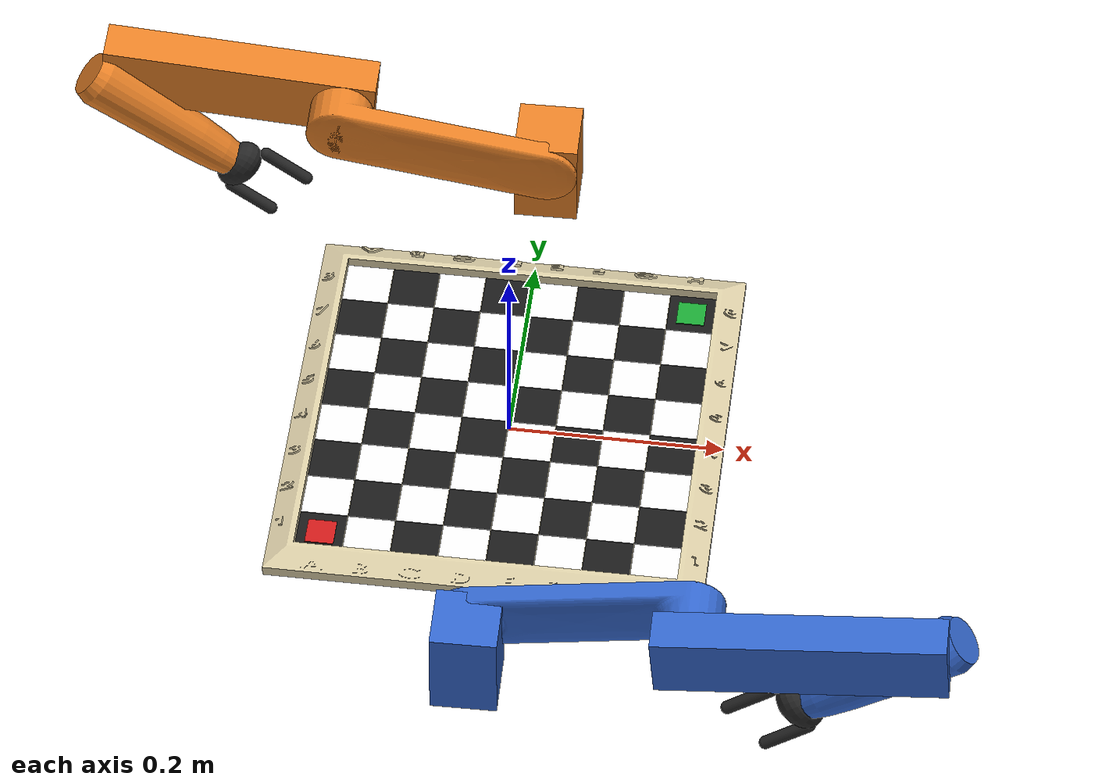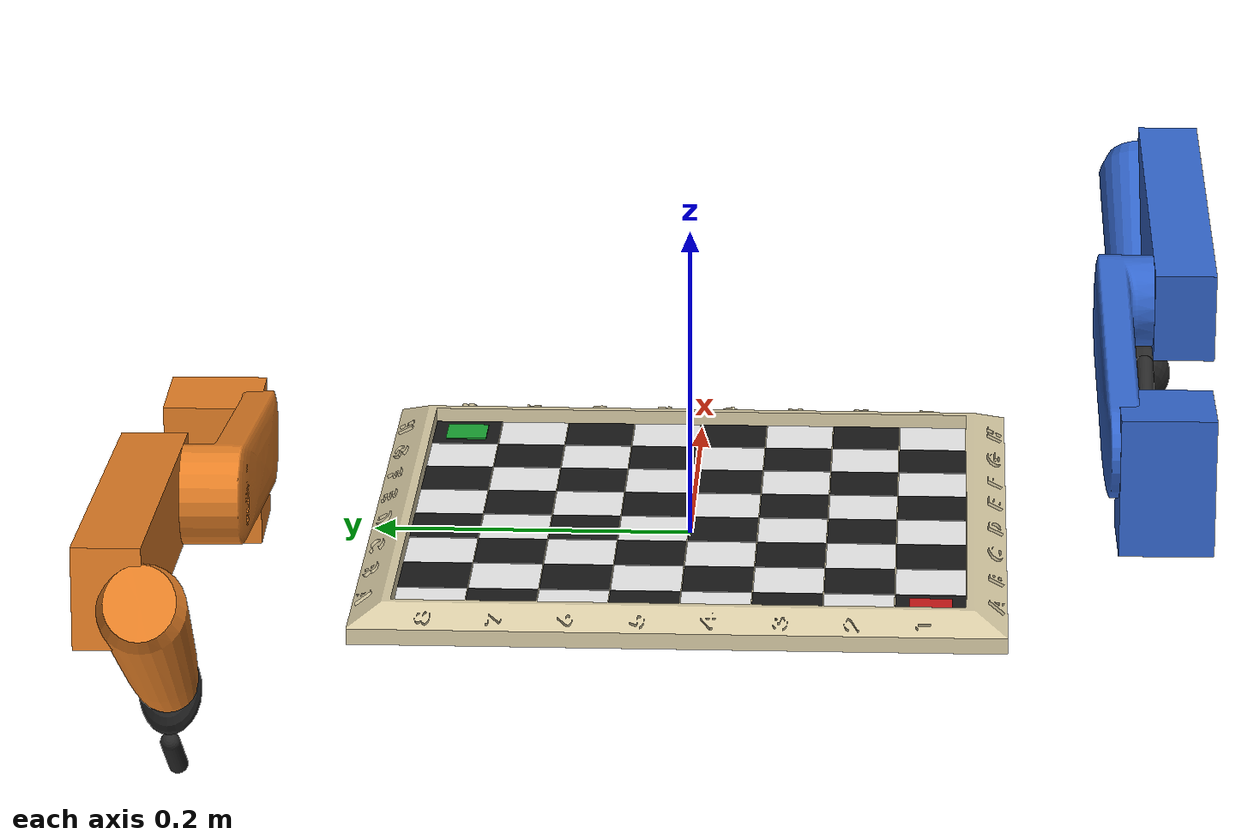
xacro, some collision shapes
<?xml version="1.0"?>
<robot name="dual_chess" xmlns:xacro="http://www.ros.org/wiki/xacro">
  <xacro:arg name="robot1_enabled" default="true"/>
  <xacro:arg name="robot2_enabled" default="true"/>
  <xacro:arg name="sim_gazebo" default="false"/>
  <!-- Compatibility with v1.2 launch; CAD STL is ALWAYS used. -->
  <xacro:arg name="use_meshes" default="true"/>

  <xacro:include filename="$(find dual_chess_description)/urdf/common/materials.xacro"/>
  <xacro:include filename="$(find dual_chess_description)/urdf/board/board.macro.xacro"/>
  <xacro:include filename="$(find dual_chess_description)/urdf/arm/arm_cad.macro.xacro"/>
  <xacro:include filename="$(find dual_chess_description)/urdf/arm/arm_cad.gazebo.xacro"/>

  <link name="world"/>
  <!-- Board geometry and mounting dimensions remain provisional. -->
  <xacro:chess_board parent="world"/>

  <xacro:if value="$(arg robot1_enabled)">
    <xacro:cad_chess_arm prefix="robot1_" parent="world" material="robot1_blue">
      <origin xyz="0 ${-robot_base_offset} 0" rpy="0 0 ${pi/2}"/>
    </xacro:cad_chess_arm>
  </xacro:if>
  <xacro:if value="$(arg robot2_enabled)">
    <xacro:cad_chess_arm prefix="robot2_" parent="world" material="robot2_orange">
      <origin xyz="0 ${robot_base_offset} 0" rpy="0 0 ${-pi/2}"/>
    </xacro:cad_chess_arm>
  </xacro:if>

  <xacro:if value="$(arg sim_gazebo)">
    <gazebo>
      <plugin filename="gz-sim-joint-state-publisher-system"
              name="gz::sim::systems::JointStatePublisher"/>
    </gazebo>
    <xacro:if value="$(arg robot1_enabled)">
      <xacro:cad_chess_arm_gz prefix="robot1_" ns="robot1"/>
    </xacro:if>
    <xacro:if value="$(arg robot2_enabled)">
      <xacro:cad_chess_arm_gz prefix="robot2_" ns="robot2"/>
    </xacro:if>
  </xacro:if>
</robot>

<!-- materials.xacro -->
<!-- Materials are defined ONCE (URDF material names are global). -->
<robot xmlns:xacro="http://www.ros.org/wiki/xacro">
  <material name="robot1_blue"><color rgba="0.20 0.40 0.80 1.0"/></material>
  <material name="robot2_orange"><color rgba="0.90 0.50 0.15 1.0"/></material>
  <material name="gripper_dark"><color rgba="0.15 0.15 0.15 1.0"/></material>
  <material name="board_wood"><color rgba="0.85 0.80 0.65 1.0"/></material>
  <material name="square_light"><color rgba="0.95 0.95 0.95 1.0"/></material>
  <material name="square_dark"><color rgba="0.10 0.10 0.10 1.0"/></material>
  <material name="marker_a1"><color rgba="0.80 0.10 0.10 1.0"/></material>
  <material name="marker_h8"><color rgba="0.10 0.65 0.20 1.0"/></material>
</robot>

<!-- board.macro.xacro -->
<robot xmlns:xacro="http://www.ros.org/wiki/xacro">
  <xacro:include filename="$(find dual_chess_description)/urdf/board/board_params_cad.xacro"/>

  <xacro:macro name="chess_board" params="parent">
    <link name="board_link">
      <visual name="board_cad_visual">
        <origin xyz="${-board_size/2} ${board_size/2} ${-board_thickness/2}"
                rpy="${pi/2} 0 0"/>
        <geometry>
          <mesh filename="package://dual_chess_description/meshes/chess_board/Board_1_original.STL"
                scale="0.001 0.001 0.001"/>
        </geometry>
        <!-- STL has no per-square material colours. Preserve its geometry. -->
        <material name="board_wood"/>
      </visual>

      <!-- Board squares are separate fixed child links below. RViz may apply the
           first material to all visuals if they share a single URDF link. -->
      <!-- Collision uses a simplified foundation (z=0..10 mm). -->
      <collision name="playing_area_collision">
        <origin xyz="0 0 ${-board_thickness/2 + board_play_surface_height/2}" rpy="0 0 0"/>
        <geometry><box size="${board_size} ${board_size} ${board_play_surface_height}"/></geometry>
      </collision>
      <!-- Four raised perimeter rails, preserving the 35cm playing area. -->
      <collision name="rim_left_collision">
        <origin xyz="${-board_size/2 + board_rim_width/2} 0 ${board_play_surface_height/2}"/>
        <geometry><box size="${board_rim_width} ${board_size} ${board_thickness - board_play_surface_height}"/></geometry>
      </collision>
      <collision name="rim_right_collision">
        <origin xyz="${board_size/2 - board_rim_width/2} 0 ${board_play_surface_height/2}"/>
        <geometry><box size="${board_rim_width} ${board_size} ${board_thickness - board_play_surface_height}"/></geometry>
      </collision>
      <collision name="rim_front_collision">
        <origin xyz="0 ${-board_size/2 + board_rim_width/2} ${board_play_surface_height/2}"/>
        <geometry><box size="${board_play_size} ${board_rim_width} ${board_thickness - board_play_surface_height}"/></geometry>
      </collision>
      <collision name="rim_back_collision">
        <origin xyz="0 ${board_size/2 - board_rim_width/2} ${board_play_surface_height/2}"/>
        <geometry><box size="${board_play_size} ${board_rim_width} ${board_thickness - board_play_surface_height}"/></geometry>
      </collision>

      <inertial>
        <origin xyz="0 0 0" rpy="0 0 0"/>
        <mass value="1.0"/>
        <inertia ixx="${(board_size*board_size+board_thickness*board_thickness)/12.0}" ixy="0" ixz="0"
                 iyy="${(board_size*board_size+board_thickness*board_thickness)/12.0}" iyz="0"
                 izz="${(2*board_size*board_size)/12.0}"/>
      </inertial>
    </link>

    <joint name="board_joint" type="fixed">
      <parent link="${parent}"/>
      <child link="board_link"/>
      <!-- Board rests on world z=0; link origin at the board vertical centre. -->
      <origin xyz="0 0 ${board_thickness/2}" rpy="0 0 0"/>
    </joint>

    <!-- Chessboard frame at the ACTUAL playing-square top plane z=10mm;
         raised outer frame reaches z=20.1892mm. -->
    <link name="board_surface"/>
    <joint name="board_surface_joint" type="fixed">
      <parent link="board_link"/>
      <child link="board_surface"/>
      <origin xyz="0 0 ${board_play_surface_height-board_thickness/2}" rpy="0 0 0"/>
    </joint>

    <xacro:property name="square_visual_size" value="${board_square*0.985}"/>
    <xacro:property name="square_visual_height" value="0.0008"/>
    <xacro:property name="square_visual_above_surface" value="0.0002"/>

    <link name="board_square_a1">
      <visual name="square_a1_visual">
        <origin xyz="0 0 ${square_visual_above_surface+square_visual_height/2}" rpy="0 0 0"/>
        <geometry><box size="${square_visual_size} ${square_visual_size} ${square_visual_height}"/></geometry>
        <material name="square_dark"/>
      </visual>
    </link>
    <joint name="board_square_a1_joint" type="fixed">
      <parent link="board_surface"/>
      <child link="board_square_a1"/>
      <origin xyz="${-3.5*board_square} ${-3.5*board_square} 0" rpy="0 0 0"/>
    </joint>

    <link name="board_square_b1">
      <visual name="square_b1_visual">
        <origin xyz="0 0 ${square_visual_above_surface+square_visual_height/2}" rpy="0 0 0"/>
        <geometry><box size="${square_visual_size} ${square_visual_size} ${square_visual_height}"/></geometry>
        <material name="square_light"/>
      </visual>
    </link>
    <joint name="board_square_b1_joint" type="fixed">
      <parent link="board_surface"/>
      <child link="board_square_b1"/>
      <origin xyz="${-2.5*board_square} ${-3.5*board_square} 0" rpy="0 0 0"/>
    </joint>

    <link name="board_square_c1">
      <visual name="square_c1_visual">
        <origin xyz="0 0 ${square_visual_above_surface+square_visual_height/2}" rpy="0 0 0"/>
        <geometry><box size="${square_visual_size} ${square_visual_size} ${square_visual_height}"/></geometry>
        <material name="square_dark"/>
      </visual>
    </link>
    <joint name="board_square_c1_joint" type="fixed">
      <parent link="board_surface"/>
      <child link="board_square_c1"/>
      <origin xyz="${-1.5*board_square} ${-3.5*board_square} 0" rpy="0 0 0"/>
    </joint>

    <link name="board_square_d1">
      <visual name="square_d1_visual">
        <origin xyz="0 0 ${square_visual_above_surface+square_visual_height/2}" rpy="0 0 0"/>
        <geometry><box size="${square_visual_size} ${square_visual_size} ${square_visual_height}"/></geometry>
        <material name="square_light"/>
      </visual>
    </link>
    <joint name="board_square_d1_joint" type="fixed">
      <parent link="board_surface"/>
      <child link="board_square_d1"/>
      <origin xyz="${-0.5*board_square} ${-3.5*board_square} 0" rpy="0 0 0"/>
    </joint>

    <link name="board_square_e1">
      <visual name="square_e1_visual">
        <origin xyz="0 0 ${square_visual_above_surface+square_visual_height/2}" rpy="0 0 0"/>
        <geometry><box size="${square_visual_size} ${square_visual_size} ${square_visual_height}"/></geometry>
        <material name="square_dark"/>
      </visual>
    </link>
    <joint name="board_square_e1_joint" type="fixed">
      <parent link="board_surface"/>
      <child link="board_square_e1"/>
      <origin xyz="${0.5*board_square} ${-3.5*board_square} 0" rpy="0 0 0"/>
    </joint>

    <link name="board_square_f1">
      <visual name="square_f1_visual">
        <origin xyz="0 0 ${square_visual_above_surface+square_visual_height/2}" rpy="0 0 0"/>
        <geometry><box size="${square_visual_size} ${square_visual_size} ${square_visual_height}"/></geometry>
        <material name="square_light"/>
      </visual>
    </link>
    <joint name="board_square_f1_joint" type="fixed">
      <parent link="board_surface"/>
      <child link="board_square_f1"/>
      <origin xyz="${1.5*board_square} ${-3.5*board_square} 0" rpy="0 0 0"/>
    </joint>

    <link name="board_square_g1">
      <visual name="square_g1_visual">
        <origin xyz="0 0 ${square_visual_above_surface+square_visual_height/2}" rpy="0 0 0"/>
        <geometry><box size="${square_visual_size} ${square_visual_size} ${square_visual_height}"/></geometry>
        <material name="square_dark"/>
      </visual>
    </link>
    <joint name="board_square_g1_joint" type="fixed">
      <parent link="board_surface"/>
      <child link="board_square_g1"/>
      <origin xyz="${2.5*board_square} ${-3.5*board_square} 0" rpy="0 0 0"/>
    </joint>

    <link name="board_square_h1">
      <visual name="square_h1_visual">
        <origin xyz="0 0 ${square_visual_above_surface+square_visual_height/2}" rpy="0 0 0"/>
        <geometry><box size="${square_visual_size} ${square_visual_size} ${square_visual_height}"/></geometry>
        <material name="square_light"/>
      </visual>
    </link>
    <joint name="board_square_h1_joint" type="fixed">
      <parent link="board_surface"/>
      <child link="board_square_h1"/>
      <origin xyz="${3.5*board_square} ${-3.5*board_square} 0" rpy="0 0 0"/>
    </joint>

    <link name="board_square_a2">
      <visual name="square_a2_visual">
        <origin xyz="0 0 ${square_visual_above_surface+square_visual_height/2}" rpy="0 0 0"/>
        <geometry><box size="${square_visual_size} ${square_visual_size} ${square_visual_height}"/></geometry>
        <material name="square_light"/>
      </visual>
    </link>
    <joint name="board_square_a2_joint" type="fixed">
      <parent link="board_surface"/>
      <child link="board_square_a2"/>
      <origin xyz="${-3.5*board_square} ${-2.5*board_square} 0" rpy="0 0 0"/>
    </joint>

    <link name="board_square_b2">
      <visual name="square_b2_visual">
        <origin xyz="0 0 ${square_visual_above_surface+square_visual_height/2}" rpy="0 0 0"/>
        <geometry><box size="${square_visual_size} ${square_visual_size} ${square_visual_height}"/></geometry>
        <material name="square_dark"/>
      </visual>
    </link>
    <joint name="board_square_b2_joint" type="fixed">
      <parent link="board_surface"/>
      <child link="board_square_b2"/>
      <origin xyz="${-2.5*board_square} ${-2.5*board_square} 0" rpy="0 0 0"/>
    </joint>

    <link name="board_square_c2">
      <visual name="square_c2_visual">
        <origin xyz="0 0 ${square_visual_above_surface+square_visual_height/2}" rpy="0 0 0"/>
        <geometry><box size="${square_visual_size} ${square_visual_size} ${square_visual_height}"/></geometry>
        <material name="square_light"/>
      </visual>
    </link>
    <joint name="board_square_c2_joint" type="fixed">
      <parent link="board_surface"/>
      <child link="board_square_c2"/>
      <origin xyz="${-1.5*board_square} ${-2.5*board_square} 0" rpy="0 0 0"/>
    </joint>

    <link name="board_square_d2">
      <visual name="square_d2_visual">
        <origin xyz="0 0 ${square_visual_above_surface+square_visual_height/2}" rpy="0 0 0"/>
        <geometry><box size="${square_visual_size} ${square_visual_size} ${square_visual_height}"/></geometry>
        <material name="square_dark"/>
      </visual>
    </link>
    <joint name="board_square_d2_joint" type="fixed">
      <parent link="board_surface"/>
      <child link="board_square_d2"/>
      <origin xyz="${-0.5*board_square} ${-2.5*board_square} 0" rpy="0 0 0"/>
    </joint>

    <link name="board_square_e2">
      <visual name="square_e2_visual">
        <origin xyz="0 0 ${square_visual_above_surface+square_visual_height/2}" rpy="0 0 0"/>
        <geometry><box size="${square_visual_size} ${square_visual_size} ${square_visual_height}"/></geometry>
        <material name="square_light"/>
      </visual>
    </link>
    <joint name="board_square_e2_joint" type="fixed">
      <parent link="board_surface"/>
      <child link="board_square_e2"/>
      <origin xyz="${0.5*board_square} ${-2.5*board_square} 0" rpy="0 0 0"/>
    </joint>

    <link name="board_square_f2">
      <visual name="square_f2_visual">
        <origin xyz="0 0 ${square_visual_above_surface+square_visual_height/2}" rpy="0 0 0"/>
        <geometry><box size="${square_visual_size} ${square_visual_size} ${square_visual_height}"/></geometry>
        <material name="square_dark"/>
      </visual>
    </link>
    <joint name="board_square_f2_joint" type="fixed">
      <parent link="board_surface"/>
      <child link="board_square_f2"/>
      <origin xyz="${1.5*board_square} ${-2.5*board_square} 0" rpy="0 0 0"/>
    </joint>

    <link name="board_square_g2">
      <visual name="square_g2_visual">
        <origin xyz="0 0 ${square_visual_above_surface+square_visual_height/2}" rpy="0 0 0"/>
        <geometry><box size="${square_visual_size} ${square_visual_size} ${square_visual_height}"/></geometry>
        <material name="square_light"/>
      </visual>
    </link>
    <joint name="board_square_g2_joint" type="fixed">
      <parent link="board_surface"/>
      <child link="board_square_g2"/>
      <origin xyz="${2.5*board_square} ${-2.5*board_square} 0" rpy="0 0 0"/>
    </joint>

    <link name="board_square_h2">
      <visual name="square_h2_visual">
        <origin xyz="0 0 ${square_visual_above_surface+square_visual_height/2}" rpy="0 0 0"/>
        <geometry><box size="${square_visual_size} ${square_visual_size} ${square_visual_height}"/></geometry>
        <material name="square_dark"/>
      </visual>
    </link>
    <joint name="board_square_h2_joint" type="fixed">
      <parent link="board_surface"/>
      <child link="board_square_h2"/>
      <origin xyz="${3.5*board_square} ${-2.5*board_square} 0" rpy="0 0 0"/>
    </joint>

    <link name="board_square_a3">
      <visual name="square_a3_visual">
        <origin xyz="0 0 ${square_visual_above_surface+square_visual_height/2}" rpy="0 0 0"/>
        <geometry><box size="${square_visual_size} ${square_visual_size} ${square_visual_height}"/></geometry>
        <material name="square_dark"/>
      </visual>
    </link>
    <joint name="board_square_a3_joint" type="fixed">
      <parent link="board_surface"/>
      <child link="board_square_a3"/>
      <origin xyz="${-3.5*board_square} ${-1.5*board_square} 0" rpy="0 0 0"/>
    </joint>

    <link name="board_square_b3">
      <visual name="square_b3_visual">
        <origin xyz="0 0 ${square_visual_above_surface+square_visual_height/2}" rpy="0 0 0"/>
        <geometry><box size="${square_visual_size} ${square_visual_size} ${square_visual_height}"/></geometry>
        <material name="square_light"/>
      </visual>
    </link>
    <joint name="board_square_b3_joint" type="fixed">
      <parent link="board_surface"/>
      <child link="board_square_b3"/>
      <origin xyz="${-2.5*board_square} ${-1.5*board_square} 0" rpy="0 0 0"/>
    </joint>

    <link name="board_square_c3">
      <visual name="square_c3_visual">
        <origin xyz="0 0 ${square_visual_above_surface+square_visual_height/2}" rpy="0 0 0"/>
        <geometry><box size="${square_visual_size} ${square_visual_size} ${square_visual_height}"/></geometry>
        <material name="square_dark"/>
      </visual>
    </link>
    <joint name="board_square_c3_joint" type="fixed">
      <parent link="board_surface"/>
      <child link="board_square_c3"/>
      <origin xyz="${-1.5*board_square} ${-1.5*board_square} 0" rpy="0 0 0"/>
    </joint>

    <link name="board_square_d3">
      <visual name="square_d3_visual">
        <origin xyz="0 0 ${square_visual_above_surface+square_visual_height/2}" rpy="0 0 0"/>
        <geometry><box size="${square_visual_size} ${square_visual_size} ${square_visual_height}"/></geometry>
        <material name="square_light"/>
      </visual>
    </link>
    <joint name="board_square_d3_joint" type="fixed">
      <parent link="board_surface"/>
      <child link="board_square_d3"/>
      <origin xyz="${-0.5*board_square} ${-1.5*board_square} 0" rpy="0 0 0"/>
    </joint>

    <link name="board_square_e3">
      <visual name="square_e3_visual">
        <origin xyz="0 0 ${square_visual_above_surface+square_visual_height/2}" rpy="0 0 0"/>
        <geometry><box size="${square_visual_size} ${square_visual_size} ${square_visual_height}"/></geometry>
        <material name="square_dark"/>
      </visual>
    </link>
    <joint name="board_square_e3_joint" type="fixed">
      <parent link="board_surface"/>
      <child link="board_square_e3"/>
      <origin xyz="${0.5*board_square} ${-1.5*board_square} 0" rpy="0 0 0"/>
    </joint>

    <link name="board_square_f3">
      <visual name="square_f3_visual">
        <origin xyz="0 0 ${square_visual_above_surface+square_visual_height/2}" rpy="0 0 0"/>
        <geometry><box size="${square_visual_size} ${square_visual_size} ${square_visual_height}"/></geometry>
        <material name="square_light"/>
      </visual>
    </link>
    <joint name="board_square_f3_joint" type="fixed">
      <parent link="board_surface"/>
      <child link="board_square_f3"/>
      <origin xyz="${1.5*board_square} ${-1.5*board_square} 0" rpy="0 0 0"/>
    </joint>

    <link name="board_square_g3">
      <visual name="square_g3_visual">
        <origin xyz="0 0 ${square_visual_above_surface+square_visual_height/2}" rpy="0 0 0"/>
        <geometry><box size="${square_visual_size} ${square_visual_size} ${square_visual_height}"/></geometry>
        <material name="square_dark"/>
      </visual>
    </link>
    <joint name="board_square_g3_joint" type="fixed">
      <parent link="board_surface"/>
      <child link="board_square_g3"/>
      <origin xyz="${2.5*board_square} ${-1.5*board_square} 0" rpy="0 0 0"/>
    </joint>

    <link name="board_square_h3">
      <visual name="square_h3_visual">
        <origin xyz="0 0 ${square_visual_above_surface+square_visual_height/2}" rpy="0 0 0"/>
        <geometry><box size="${square_visual_size} ${square_visual_size} ${square_visual_height}"/></geometry>
        <material name="square_light"/>
      </visual>
    </link>
    <joint name="board_square_h3_joint" type="fixed">
      <parent link="board_surface"/>
      <child link="board_square_h3"/>
      <origin xyz="${3.5*board_square} ${-1.5*board_square} 0" rpy="0 0 0"/>
    </joint>

    <link name="board_square_a4">
      <visual name="square_a4_visual">
        <origin xyz="0 0 ${square_visual_above_surface+square_visual_height/2}" rpy="0 0 0"/>
        <geometry><box size="${square_visual_size} ${square_visual_size} ${square_visual_height}"/></geometry>
        <material name="square_light"/>
      </visual>
    </link>
    <joint name="board_square_a4_joint" type="fixed">
      <parent link="board_surface"/>
      <child link="board_square_a4"/>
      <origin xyz="${-3.5*board_square} ${-0.5*board_square} 0" rpy="0 0 0"/>
    </joint>

    <link name="board_square_b4">
      <visual name="square_b4_visual">
        <origin xyz="0 0 ${square_visual_above_surface+square_visual_height/2}" rpy="0 0 0"/>
        <geometry><box size="${square_visual_size} ${square_visual_size} ${square_visual_height}"/></geometry>
        <material name="square_dark"/>
      </visual>
    </link>
    <joint name="board_square_b4_joint" type="fixed">
      <parent link="board_surface"/>
      <child link="board_square_b4"/>
      <origin xyz="${-2.5*board_square} ${-0.5*board_square} 0" rpy="0 0 0"/>
    </joint>

    <link name="board_square_c4">
      <visual name="square_c4_visual">
        <origin xyz="0 0 ${square_visual_above_surface+square_visual_height/2}" rpy="0 0 0"/>
        <geometry><box size="${square_visual_size} ${square_visual_size} ${square_visual_height}"/></geometry>
        <material name="square_light"/>
      </visual>
    </link>
    <joint name="board_square_c4_joint" type="fixed">
      <parent link="board_surface"/>
      <child link="board_square_c4"/>
      <origin xyz="${-1.5*board_square} ${-0.5*board_square} 0" rpy="0 0 0"/>
    </joint>

    <link name="board_square_d4">
      <visual name="square_d4_visual">
        <origin xyz="0 0 ${square_visual_above_surface+square_visual_height/2}" rpy="0 0 0"/>
        <geometry><box size="${square_visual_size} ${square_visual_size} ${square_visual_height}"/></geometry>
        <material name="square_dark"/>
      </visual>
    </link>
    <joint name="board_square_d4_joint" type="fixed">
      <parent link="board_surface"/>
      <child link="board_square_d4"/>
      <origin xyz="${-0.5*board_square} ${-0.5*board_square} 0" rpy="0 0 0"/>
    </joint>

    <link name="board_square_e4">
      <visual name="square_e4_visual">
        <origin xyz="0 0 ${square_visual_above_surface+square_visual_height/2}" rpy="0 0 0"/>
        <geometry><box size="${square_visual_size} ${square_visual_size} ${square_visual_height}"/></geometry>
        <material name="square_light"/>
      </visual>
    </link>
    <joint name="board_square_e4_joint" type="fixed">
      <parent link="board_surface"/>
      <child link="board_square_e4"/>
      <origin xyz="${0.5*board_square} ${-0.5*board_square} 0" rpy="0 0 0"/>
    </joint>

    <link name="board_square_f4">
      <visual name="square_f4_visual">
        <origin xyz="0 0 ${square_visual_above_surface+square_visual_height/2}" rpy="0 0 0"/>
        <geometry><box size="${square_visual_size} ${square_visual_size} ${square_visual_height}"/></geometry>
        <material name="square_dark"/>
      </visual>
    </link>
    <joint name="board_square_f4_joint" type="fixed">
      <parent link="board_surface"/>
      <child link="board_square_f4"/>
      <origin xyz="${1.5*board_square} ${-0.5*board_square} 0" rpy="0 0 0"/>
    </joint>

    <link name="board_square_g4">
      <visual name="square_g4_visual">
        <origin xyz="0 0 ${square_visual_above_surface+square_visual_height/2}" rpy="0 0 0"/>
        <geometry><box size="${square_visual_size} ${square_visual_size} ${square_visual_height}"/></geometry>
        <material name="square_light"/>
      </visual>
    </link>
    <joint name="board_square_g4_joint" type="fixed">
      <parent link="board_surface"/>
      <child link="board_square_g4"/>
      <origin xyz="${2.5*board_square} ${-0.5*board_square} 0" rpy="0 0 0"/>
    </joint>

    <link name="board_square_h4">
      <visual name="square_h4_visual">
        <origin xyz="0 0 ${square_visual_above_surface+square_visual_height/2}" rpy="0 0 0"/>
        <geometry><box size="${square_visual_size} ${square_visual_size} ${square_visual_height}"/></geometry>
        <material name="square_dark"/>
      </visual>
    </link>
    <joint name="board_square_h4_joint" type="fixed">
      <parent link="board_surface"/>
      <child link="board_square_h4"/>
      <origin xyz="${3.5*board_square} ${-0.5*board_square} 0" rpy="0 0 0"/>
    </joint>

    <link name="board_square_a5">
      <visual name="square_a5_visual">
        <origin xyz="0 0 ${square_visual_above_surface+square_visual_height/2}" rpy="0 0 0"/>
        <geometry><box size="${square_visual_size} ${square_visual_size} ${square_visual_height}"/></geometry>
        <material name="square_dark"/>
      </visual>
    </link>
    <joint name="board_square_a5_joint" type="fixed">
      <parent link="board_surface"/>
      <child link="board_square_a5"/>
      <origin xyz="${-3.5*board_square} ${0.5*board_square} 0" rpy="0 0 0"/>
    </joint>

    <link name="board_square_b5">
      <visual name="square_b5_visual">
        <origin xyz="0 0 ${square_visual_above_surface+square_visual_height/2}" rpy="0 0 0"/>
        <geometry><box size="${square_visual_size} ${square_visual_size} ${square_visual_height}"/></geometry>
        <material name="square_light"/>
      </visual>
    </link>
    <joint name="board_square_b5_joint" type="fixed">
      <parent link="board_surface"/>
      <child link="board_square_b5"/>
      <origin xyz="${-2.5*board_square} ${0.5*board_square} 0" rpy="0 0 0"/>
    </joint>

    <link name="board_square_c5">
      <visual name="square_c5_visual">
        <origin xyz="0 0 ${square_visual_above_surface+square_visual_height/2}" rpy="0 0 0"/>
        <geometry><box size="${square_visual_size} ${square_visual_size} ${square_visual_height}"/></geometry>
        <material name="square_dark"/>
      </visual>
    </link>
    <joint name="board_square_c5_joint" type="fixed">
      <parent link="board_surface"/>
      <child link="board_square_c5"/>
      <origin xyz="${-1.5*board_square} ${0.5*board_square} 0" rpy="0 0 0"/>
    </joint>

    <link name="board_square_d5">
      <visual name="square_d5_visual">
        <origin xyz="0 0 ${square_visual_above_surface+square_visual_height/2}" rpy="0 0 0"/>
        <geometry><box size="${square_visual_size} ${square_visual_size} ${square_visual_height}"/></geometry>
        <material name="square_light"/>
      </visual>
    </link>
    <joint name="board_square_d5_joint" type="fixed">
      <parent link="board_surface"/>
      <child link="board_square_d5"/>
      <origin xyz="${-0.5*board_square} ${0.5*board_square} 0" rpy="0 0 0"/>
    </joint>

    <link name="board_square_e5">
      <visual name="square_e5_visual">
        <origin xyz="0 0 ${square_visual_above_surface+square_visual_height/2}" rpy="0 0 0"/>
        <geometry><box size="${square_visual_size} ${square_visual_size} ${square_visual_height}"/></geometry>
        <material name="square_dark"/>
      </visual>
    </link>
    <joint name="board_square_e5_joint" type="fixed">
      <parent link="board_surface"/>
      <child link="board_square_e5"/>
      <origin xyz="${0.5*board_square} ${0.5*board_square} 0" rpy="0 0 0"/>
    </joint>

    <link name="board_square_f5">
      <visual name="square_f5_visual">
        <origin xyz="0 0 ${square_visual_above_surface+square_visual_height/2}" rpy="0 0 0"/>
        <geometry><box size="${square_visual_size} ${square_visual_size} ${square_visual_height}"/></geometry>
        <material name="square_light"/>
      </visual>
    </link>
    <joint name="board_square_f5_joint" type="fixed">
      <parent link="board_surface"/>
      <child link="board_square_f5"/>
      <origin xyz="${1.5*board_square} ${0.5*board_square} 0" rpy="0 0 0"/>
    </joint>

    <link name="board_square_g5">
      <visual name="square_g5_visual">
        <origin xyz="0 0 ${square_visual_above_surface+square_visual_height/2}" rpy="0 0 0"/>
        <geometry><box size="${square_visual_size} ${square_visual_size} ${square_visual_height}"/></geometry>
        <material name="square_dark"/>
      </visual>
    </link>
    <joint name="board_square_g5_joint" type="fixed">
      <parent link="board_surface"/>
      <child link="board_square_g5"/>
      <origin xyz="${2.5*board_square} ${0.5*board_square} 0" rpy="0 0 0"/>
    </joint>

    <link name="board_square_h5">
      <visual name="square_h5_visual">
        <origin xyz="0 0 ${square_visual_above_surface+square_visual_height/2}" rpy="0 0 0"/>
        <geometry><box size="${square_visual_size} ${square_visual_size} ${square_visual_height}"/></geometry>
        <material name="square_light"/>
      </visual>
    </link>
    <joint name="board_square_h5_joint" type="fixed">
      <parent link="board_surface"/>
      <child link="board_square_h5"/>
      <origin xyz="${3.5*board_square} ${0.5*board_square} 0" rpy="0 0 0"/>
    </joint>

    <link name="board_square_a6">
      <visual name="square_a6_visual">
        <origin xyz="0 0 ${square_visual_above_surface+square_visual_height/2}" rpy="0 0 0"/>
        <geometry><box size="${square_visual_size} ${square_visual_size} ${square_visual_height}"/></geometry>
        <material name="square_light"/>
      </visual>
    </link>
    <joint name="board_square_a6_joint" type="fixed">
      <parent link="board_surface"/>
      <child link="board_square_a6"/>
      <origin xyz="${-3.5*board_square} ${1.5*board_square} 0" rpy="0 0 0"/>
    </joint>

    <link name="board_square_b6">
      <visual name="square_b6_visual">
        <origin xyz="0 0 ${square_visual_above_surface+square_visual_height/2}" rpy="0 0 0"/>
        <geometry><box size="${square_visual_size} ${square_visual_size} ${square_visual_height}"/></geometry>
        <material name="square_dark"/>
      </visual>
    </link>
    <joint name="board_square_b6_joint" type="fixed">
      <parent link="board_surface"/>
      <child link="board_square_b6"/>
      <origin xyz="${-2.5*board_square} ${1.5*board_square} 0" rpy="0 0 0"/>
    </joint>

    <link name="board_square_c6">
      <visual name="square_c6_visual">
        <origin xyz="0 0 ${square_visual_above_surface+square_visual_height/2}" rpy="0 0 0"/>
        <geometry><box size="${square_visual_size} ${square_visual_size} ${square_visual_height}"/></geometry>
        <material name="square_light"/>
      </visual>
    </link>
    <joint name="board_square_c6_joint" type="fixed">
      <parent link="board_surface"/>
      <child link="board_square_c6"/>
      <origin xyz="${-1.5*board_square} ${1.5*board_square} 0" rpy="0 0 0"/>
    </joint>

    <link name="board_square_d6">
      <visual name="square_d6_visual">
        <origin xyz="0 0 ${square_visual_above_surface+square_visual_height/2}" rpy="0 0 0"/>
        <geometry><box size="${square_visual_size} ${square_visual_size} ${square_visual_height}"/></geometry>
        <material name="square_dark"/>
      </visual>
    </link>
    <joint name="board_square_d6_joint" type="fixed">
      <parent link="board_surface"/>
      <child link="board_square_d6"/>
      <origin xyz="${-0.5*board_square} ${1.5*board_square} 0" rpy="0 0 0"/>
    </joint>

    <link name="board_square_e6">
      <visual name="square_e6_visual">
        <origin xyz="0 0 ${square_visual_above_surface+square_visual_height/2}" rpy="0 0 0"/>
        <geometry><box size="${square_visual_size} ${square_visual_size} ${square_visual_height}"/></geometry>
        <material name="square_light"/>
      </visual>
    </link>
    <joint name="board_square_e6_joint" type="fixed">
      <parent link="board_surface"/>
      <child link="board_square_e6"/>
      <origin xyz="${0.5*board_square} ${1.5*board_square} 0" rpy="0 0 0"/>
    </joint>

    <link name="board_square_f6">
      <visual name="square_f6_visual">
        <origin xyz="0 0 ${square_visual_above_surface+square_visual_height/2}" rpy="0 0 0"/>
        <geometry><box size="${square_visual_size} ${square_visual_size} ${square_visual_height}"/></geometry>
        <material name="square_dark"/>
      </visual>
    </link>
    <joint name="board_square_f6_joint" type="fixed">
      <parent link="board_surface"/>
      <child link="board_square_f6"/>
      <origin xyz="${1.5*board_square} ${1.5*board_square} 0" rpy="0 0 0"/>
    </joint>

    <link name="board_square_g6">
      <visual name="square_g6_visual">
        <origin xyz="0 0 ${square_visual_above_surface+square_visual_height/2}" rpy="0 0 0"/>
        <geometry><box size="${square_visual_size} ${square_visual_size} ${square_visual_height}"/></geometry>
        <material name="square_light"/>
      </visual>
    </link>
    <joint name="board_square_g6_joint" type="fixed">
      <parent link="board_surface"/>
      <child link="board_square_g6"/>
      <origin xyz="${2.5*board_square} ${1.5*board_square} 0" rpy="0 0 0"/>
    </joint>

    <link name="board_square_h6">
      <visual name="square_h6_visual">
        <origin xyz="0 0 ${square_visual_above_surface+square_visual_height/2}" rpy="0 0 0"/>
        <geometry><box size="${square_visual_size} ${square_visual_size} ${square_visual_height}"/></geometry>
        <material name="square_dark"/>
      </visual>
    </link>
    <joint name="board_square_h6_joint" type="fixed">
      <parent link="board_surface"/>
      <child link="board_square_h6"/>
      <origin xyz="${3.5*board_square} ${1.5*board_square} 0" rpy="0 0 0"/>
    </joint>

    <link name="board_square_a7">
      <visual name="square_a7_visual">
        <origin xyz="0 0 ${square_visual_above_surface+square_visual_height/2}" rpy="0 0 0"/>
        <geometry><box size="${square_visual_size} ${square_visual_size} ${square_visual_height}"/></geometry>
        <material name="square_dark"/>
      </visual>
    </link>
    <joint name="board_square_a7_joint" type="fixed">
      <parent link="board_surface"/>
      <child link="board_square_a7"/>
      <origin xyz="${-3.5*board_square} ${2.5*board_square} 0" rpy="0 0 0"/>
    </joint>

    <link name="board_square_b7">
      <visual name="square_b7_visual">
        <origin xyz="0 0 ${square_visual_above_surface+square_visual_height/2}" rpy="0 0 0"/>
        <geometry><box size="${square_visual_size} ${square_visual_size} ${square_visual_height}"/></geometry>
        <material name="square_light"/>
      </visual>
    </link>
    <joint name="board_square_b7_joint" type="fixed">
      <parent link="board_surface"/>
      <child link="board_square_b7"/>
      <origin xyz="${-2.5*board_square} ${2.5*board_square} 0" rpy="0 0 0"/>
    </joint>

    <link name="board_square_c7">
      <visual name="square_c7_visual">
        <origin xyz="0 0 ${square_visual_above_surface+square_visual_height/2}" rpy="0 0 0"/>
        <geometry><box size="${square_visual_size} ${square_visual_size} ${square_visual_height}"/></geometry>
        <material name="square_dark"/>
      </visual>
    </link>
    <joint name="board_square_c7_joint" type="fixed">
      <parent link="board_surface"/>
      <child link="board_square_c7"/>
      <origin xyz="${-1.5*board_square} ${2.5*board_square} 0" rpy="0 0 0"/>
    </joint>

    <link name="board_square_d7">
      <visual name="square_d7_visual">
        <origin xyz="0 0 ${square_visual_above_surface+square_visual_height/2}" rpy="0 0 0"/>
        <geometry><box size="${square_visual_size} ${square_visual_size} ${square_visual_height}"/></geometry>
        <material name="square_light"/>
      </visual>
    </link>
    <joint name="board_square_d7_joint" type="fixed">
      <parent link="board_surface"/>
      <child link="board_square_d7"/>
      <origin xyz="${-0.5*board_square} ${2.5*board_square} 0" rpy="0 0 0"/>
    </joint>

    <link name="board_square_e7">
      <visual name="square_e7_visual">
        <origin xyz="0 0 ${square_visual_above_surface+square_visual_height/2}" rpy="0 0 0"/>
        <geometry><box size="${square_visual_size} ${square_visual_size} ${square_visual_height}"/></geometry>
        <material name="square_dark"/>
      </visual>
    </link>
    <joint name="board_square_e7_joint" type="fixed">
      <parent link="board_surface"/>
      <child link="board_square_e7"/>
      <origin xyz="${0.5*board_square} ${2.5*board_square} 0" rpy="0 0 0"/>
    </joint>

    <link name="board_square_f7">
      <visual name="square_f7_visual">
        <origin xyz="0 0 ${square_visual_above_surface+square_visual_height/2}" rpy="0 0 0"/>
        <geometry><box size="${square_visual_size} ${square_visual_size} ${square_visual_height}"/></geometry>
        <material name="square_light"/>
      </visual>
    </link>
    <joint name="board_square_f7_joint" type="fixed">
      <parent link="board_surface"/>
      <child link="board_square_f7"/>
      <origin xyz="${1.5*board_square} ${2.5*board_square} 0" rpy="0 0 0"/>
    </joint>

    <link name="board_square_g7">
      <visual name="square_g7_visual">
        <origin xyz="0 0 ${square_visual_above_surface+square_visual_height/2}" rpy="0 0 0"/>
        <geometry><box size="${square_visual_size} ${square_visual_size} ${square_visual_height}"/></geometry>
        <material name="square_dark"/>
      </visual>
    </link>
    <joint name="board_square_g7_joint" type="fixed">
      <parent link="board_surface"/>
      <child link="board_square_g7"/>
      <origin xyz="${2.5*board_square} ${2.5*board_square} 0" rpy="0 0 0"/>
    </joint>

    <link name="board_square_h7">
      <visual name="square_h7_visual">
        <origin xyz="0 0 ${square_visual_above_surface+square_visual_height/2}" rpy="0 0 0"/>
        <geometry><box size="${square_visual_size} ${square_visual_size} ${square_visual_height}"/></geometry>
        <material name="square_light"/>
      </visual>
    </link>
    <joint name="board_square_h7_joint" type="fixed">
      <parent link="board_surface"/>
      <child link="board_square_h7"/>
      <origin xyz="${3.5*board_square} ${2.5*board_square} 0" rpy="0 0 0"/>
    </joint>

    <link name="board_square_a8">
      <visual name="square_a8_visual">
        <origin xyz="0 0 ${square_visual_above_surface+square_visual_height/2}" rpy="0 0 0"/>
        <geometry><box size="${square_visual_size} ${square_visual_size} ${square_visual_height}"/></geometry>
        <material name="square_light"/>
      </visual>
    </link>
    <joint name="board_square_a8_joint" type="fixed">
      <parent link="board_surface"/>
      <child link="board_square_a8"/>
      <origin xyz="${-3.5*board_square} ${3.5*board_square} 0" rpy="0 0 0"/>
    </joint>

    <link name="board_square_b8">
      <visual name="square_b8_visual">
        <origin xyz="0 0 ${square_visual_above_surface+square_visual_height/2}" rpy="0 0 0"/>
        <geometry><box size="${square_visual_size} ${square_visual_size} ${square_visual_height}"/></geometry>
        <material name="square_dark"/>
      </visual>
    </link>
    <joint name="board_square_b8_joint" type="fixed">
      <parent link="board_surface"/>
      <child link="board_square_b8"/>
      <origin xyz="${-2.5*board_square} ${3.5*board_square} 0" rpy="0 0 0"/>
    </joint>

    <link name="board_square_c8">
      <visual name="square_c8_visual">
        <origin xyz="0 0 ${square_visual_above_surface+square_visual_height/2}" rpy="0 0 0"/>
        <geometry><box size="${square_visual_size} ${square_visual_size} ${square_visual_height}"/></geometry>
        <material name="square_light"/>
      </visual>
    </link>
    <joint name="board_square_c8_joint" type="fixed">
      <parent link="board_surface"/>
      <child link="board_square_c8"/>
      <origin xyz="${-1.5*board_square} ${3.5*board_square} 0" rpy="0 0 0"/>
    </joint>

    <link name="board_square_d8">
      <visual name="square_d8_visual">
        <origin xyz="0 0 ${square_visual_above_surface+square_visual_height/2}" rpy="0 0 0"/>
        <geometry><box size="${square_visual_size} ${square_visual_size} ${square_visual_height}"/></geometry>
        <material name="square_dark"/>
      </visual>
    </link>
    <joint name="board_square_d8_joint" type="fixed">
      <parent link="board_surface"/>
      <child link="board_square_d8"/>
      <origin xyz="${-0.5*board_square} ${3.5*board_square} 0" rpy="0 0 0"/>
    </joint>

    <link name="board_square_e8">
      <visual name="square_e8_visual">
        <origin xyz="0 0 ${square_visual_above_surface+square_visual_height/2}" rpy="0 0 0"/>
        <geometry><box size="${square_visual_size} ${square_visual_size} ${square_visual_height}"/></geometry>
        <material name="square_light"/>
      </visual>
    </link>
    <joint name="board_square_e8_joint" type="fixed">
      <parent link="board_surface"/>
      <child link="board_square_e8"/>
      <origin xyz="${0.5*board_square} ${3.5*board_square} 0" rpy="0 0 0"/>
    </joint>

    <link name="board_square_f8">
      <visual name="square_f8_visual">
        <origin xyz="0 0 ${square_visual_above_surface+square_visual_height/2}" rpy="0 0 0"/>
        <geometry><box size="${square_visual_size} ${square_visual_size} ${square_visual_height}"/></geometry>
        <material name="square_dark"/>
      </visual>
    </link>
    <joint name="board_square_f8_joint" type="fixed">
      <parent link="board_surface"/>
      <child link="board_square_f8"/>
      <origin xyz="${1.5*board_square} ${3.5*board_square} 0" rpy="0 0 0"/>
    </joint>

    <link name="board_square_g8">
      <visual name="square_g8_visual">
        <origin xyz="0 0 ${square_visual_above_surface+square_visual_height/2}" rpy="0 0 0"/>
        <geometry><box size="${square_visual_size} ${square_visual_size} ${square_visual_height}"/></geometry>
        <material name="square_light"/>
      </visual>
    </link>
    <joint name="board_square_g8_joint" type="fixed">
      <parent link="board_surface"/>
      <child link="board_square_g8"/>
      <origin xyz="${2.5*board_square} ${3.5*board_square} 0" rpy="0 0 0"/>
    </joint>

    <link name="board_square_h8">
      <visual name="square_h8_visual">
        <origin xyz="0 0 ${square_visual_above_surface+square_visual_height/2}" rpy="0 0 0"/>
        <geometry><box size="${square_visual_size} ${square_visual_size} ${square_visual_height}"/></geometry>
        <material name="square_dark"/>
      </visual>
    </link>
    <joint name="board_square_h8_joint" type="fixed">
      <parent link="board_surface"/>
      <child link="board_square_h8"/>
      <origin xyz="${3.5*board_square} ${3.5*board_square} 0" rpy="0 0 0"/>
    </joint>

    <link name="board_a1">
      <visual>
        <origin xyz="0 0 0.001"/>
        <geometry><box size="${board_square*0.6} ${board_square*0.6} 0.002"/></geometry>
        <material name="marker_a1"/>
      </visual>
    </link>
    <joint name="board_a1_joint" type="fixed">
      <parent link="board_surface"/>
      <child link="board_a1"/>
      <origin xyz="${-3.5*board_square} ${-3.5*board_square} 0" rpy="0 0 0"/>
    </joint>

    <link name="board_h8">
      <visual>
        <origin xyz="0 0 0.001"/>
        <geometry><box size="${board_square*0.6} ${board_square*0.6} 0.002"/></geometry>
        <material name="marker_h8"/>
      </visual>
    </link>
    <joint name="board_h8_joint" type="fixed">
      <parent link="board_surface"/>
      <child link="board_h8"/>
      <origin xyz="${3.5*board_square} ${3.5*board_square} 0" rpy="0 0 0"/>
    </joint>
  </xacro:macro>
</robot>

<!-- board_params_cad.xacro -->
<robot xmlns:xacro="http://www.ros.org/wiki/xacro">
  <xacro:property name="board_size" value="0.4"/>
  <xacro:property name="board_play_size" value="0.35"/>
  <xacro:property name="board_square" value="${board_play_size/8}"/>
  <xacro:property name="board_thickness" value="0.020189205169677734"/>
  <xacro:property name="board_play_surface_height" value="0.010"/>
  <xacro:property name="board_rim_width" value="${(board_size-board_play_size)/2}"/>
  <xacro:property name="base_gap" value="0.10"/>
  <xacro:property name="robot_base_offset" value="${board_size/2 + base_gap}"/>
</robot>

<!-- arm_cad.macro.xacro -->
<robot xmlns:xacro="http://www.ros.org/wiki/xacro">
  <xacro:macro name="cad_chess_arm" params="prefix parent material *origin">

    <!-- Moving body representing the CAD base / motor envelope. Base yaw pivot is
         at xyz=(0,0,0) of this link, centred under the upright STL body. -->
    <link name="${prefix}base_yaw_link">
      <inertial>
        <origin xyz="-0.00834920606849433 -0.0001580550515595949 0.0348740063996899" rpy="0 0 0"/>
        <mass value="0.137152664065849"/>
        <inertia ixx="0.0001130854461784762" ixy="2.181096808120351e-07" ixz="1.285972249639045e-05"
                 iyy="0.0001015628821625788" iyz="2.433547080519745e-07" izz="4.8682005014185e-05"/>
      </inertial>
      <visual>
        <origin xyz="0 0 0" rpy="1.5707963267949 0 0.01892161378040547"/>
        <geometry><mesh filename="package://dual_chess_description/meshes/robot_arm/link0.STL"/></geometry>
        <material name="${material}"/>
      </visual>
      <!-- Approximate primitive collision. Refine from approved mechanical drawing. -->
      <collision>
        <origin xyz="0 -1.623701173514291e-16 0.045" rpy="1.5707963267949 0 0.01892161378040547"/>
        <geometry><box size="0.06 0.09 0.06"/></geometry>
      </collision>
    </link>

    <!-- Base yaw hardware is intended but absent in SolidWorks export.
         Continuous is provisional, pending real hard-stop and motor specifications. -->
    <joint name="${prefix}base_yaw_joint" type="continuous">
      <parent link="${parent}"/>
      <child link="${prefix}base_yaw_link"/>
      <xacro:insert_block name="origin"/>
      <axis xyz="0 0 1"/>
    </joint>

    <!-- Frame-only aliases preserve the exported link/joint reference transforms.
         They do NOT get extra visual, collision, or inertial mass. -->
    <link name="${prefix}base_link"/>
    <joint name="${prefix}base_mount_fixed" type="fixed">
      <parent link="${prefix}base_yaw_link"/>
      <child link="${prefix}base_link"/>
      <origin xyz="0.185810249819478 0.243972086655367 0.126612878977615" rpy="0 0 0"/>
    </joint>
    <link name="${prefix}link0"/>
    <joint name="${prefix}joint0" type="fixed">
      <parent link="${prefix}base_link"/>
      <child link="${prefix}link0"/>
      <origin xyz="-0.185810249819478 -0.243972086655367 -0.126612878977615"
              rpy="1.5707963267949 0 0.0189216137804055"/>
    </joint>

    <link name="${prefix}link1">
      <inertial>
        <origin xyz="-0.0834293794171425 -2.02875618701692e-06 -0.024166126213827" rpy="0 0 0"/>
        <mass value="0.366704750246748"/>
        <inertia ixx="0.00012736294072155" ixy="-7.61287766635057e-08" ixz="-2.69022395526234e-05"
                 iyy="0.00189457473585642" iyz="-6.98463767142371e-10" izz="0.00197322993923862"/>
      </inertial>
      <visual>
        <geometry><mesh filename="package://dual_chess_description/meshes/robot_arm/link1.STL"/></geometry>
        <material name="${material}"/>
      </visual>
      <collision>
        <origin xyz="-0.10 0 -0.02" rpy="0 0 0"/>
        <geometry><box size="0.26 0.06 0.04"/></geometry>
      </collision>
    </link>
    <!-- SolidWorks joint1, exactly as exported -->
    <joint name="${prefix}joint1" type="continuous">
      <parent link="${prefix}link0"/>
      <child link="${prefix}link1"/>
      <origin xyz="0 0.06 0" rpy="1.57079632679488 1.39871137927 -1.57079632679491"/>
      <axis xyz="0 0 1"/>
    </joint>

    <link name="${prefix}link2">
      <inertial>
        <origin xyz="-0.0834293854087735 -2.02919242922595e-06 -0.0241661271331371" rpy="0 0 0"/>
        <mass value="0.366704788088245"/>
        <inertia ixx="0.000127362948407977" ixy="-7.6136372281011e-08" ixz="-2.69022413756202e-05"
                 iyy="0.00189457488856351" iyz="-6.98324032778489e-10" izz="0.00197323009973326"/>
      </inertial>
      <visual>
        <geometry><mesh filename="package://dual_chess_description/meshes/robot_arm/link2.STL"/></geometry>
        <material name="${material}"/>
      </visual>
      <collision>
        <origin xyz="-0.10 0 -0.02" rpy="0 0 0"/>
        <geometry><box size="0.26 0.06 0.04"/></geometry>
      </collision>
    </link>
    <!-- SolidWorks joint2, exactly as exported -->
    <joint name="${prefix}joint2" type="continuous">
      <parent link="${prefix}link1"/>
      <child link="${prefix}link2"/>
      <origin xyz="-0.200000000000002 0 0" rpy="-3.14159265358979 0 -0.0823720646867807"/>
      <axis xyz="0 0 1"/>
    </joint>

    <link name="${prefix}link3">
      <inertial>
        <origin xyz="-0.085 0 0" rpy="0 0 0"/>
        <mass value="0.12"/>
        <inertia ixx="0.000072" ixy="0" ixz="0" iyy="0.000325" iyz="0" izz="0.000325"/>
      </inertial>
      <!-- Rounded tapered arm shell, smoothly joined at the CAD link2 tip. -->
      <visual name="rounded_wrist_visual">
        <geometry><mesh filename="package://dual_chess_description/meshes/robot_arm/temporary_wrist.stl"/></geometry>
        <material name="${material}"/>
      </visual>
      <collision name="rounded_wrist_collision">
        <origin xyz="-0.085 0 0"/>
        <geometry><box size="0.17 0.055 0.053"/></geometry>
      </collision>
      <!-- Palm and fixed finger in one dark CAD-style fork shell. -->
      <visual name="temporary_gripper_fixed_visual">
        <geometry><mesh filename="package://dual_chess_description/meshes/robot_arm/temporary_gripper_fixed.stl"/></geometry>
        <material name="gripper_dark"/>
      </visual>
      <collision name="gripper_palm_collision">
        <origin xyz="-0.175 0 0"/>
        <geometry><box size="0.035 0.055 0.037"/></geometry>
      </collision>
      <collision name="fixed_finger_collision">
        <!-- Collision covers the distal tip only, avoiding the solid palm
             collider's proximal mounting region. Visual CAD is unchanged. -->
        <origin xyz="-0.225 0.029 0"/>
        <geometry><box size="0.060 0.012 0.012"/></geometry>
      </collision>
    </link>

    <joint name="${prefix}joint3" type="revolute">
      <parent link="${prefix}link2"/>
      <child link="${prefix}link3"/>
      <origin xyz="-0.240 0 0" rpy="0 0 ${pi/2 + 1.0}"/>
      <axis xyz="0 0 1"/>
      <!-- TEST bounds only: real mechanical stops, torque and speed unknown. -->
      <limit lower="-1.2" upper="1.2" effort="5.0" velocity="0.4"/>
      <dynamics damping="0.02" friction="0.0"/>
    </joint>

    <link name="${prefix}gripper_finger_link">
      <inertial>
        <origin xyz="0 0 0" rpy="0 0 0"/>
        <mass value="0.012"/>
        <inertia ixx="0.000003" ixy="0" ixz="0" iyy="0.000007" iyz="0" izz="0.000007"/>
      </inertial>
      <visual name="rounded_moving_finger">
        <geometry><mesh filename="package://dual_chess_description/meshes/robot_arm/temporary_gripper_moving.stl"/></geometry>
        <material name="gripper_dark"/>
      </visual>
      <collision name="rounded_moving_finger_collision">
        <!-- Keep the sliding collision clear of the parent palm for every
             permitted prismatic position; do not change the finger visual. -->
        <origin xyz="-0.015 0 0"/>
        <geometry><box size="0.060 0.012 0.012"/></geometry>
      </collision>
    </link>
    <!-- One sliding finger against one fixed finger. 0m=open, motion in +Y
         closes the fork; dimensions and forces are placeholder values only. -->
    <joint name="${prefix}gripper_finger_joint" type="prismatic">
      <parent link="${prefix}link3"/>
      <child link="${prefix}gripper_finger_link"/>
      <origin xyz="-0.210 -0.029 0" rpy="0 0 0"/>
      <axis xyz="0 1 0"/>
      <limit lower="0" upper="0.045" effort="15" velocity="0.02"/>
      <dynamics damping="0.2" friction="0.0"/>
    </joint>

    <!-- Explicit ROS TCP frame, used by future IK. It may merge in Gazebo
         (which is fine: no SDF joint refers to it as an active parent). -->
    <link name="${prefix}tool0"/>
    <joint name="${prefix}tool0_fixed" type="fixed">
      <parent link="${prefix}link3"/>
      <child link="${prefix}tool0"/>
      <origin xyz="-0.240 0 0" rpy="0 0 0"/>
    </joint>

  </xacro:macro>
</robot>
